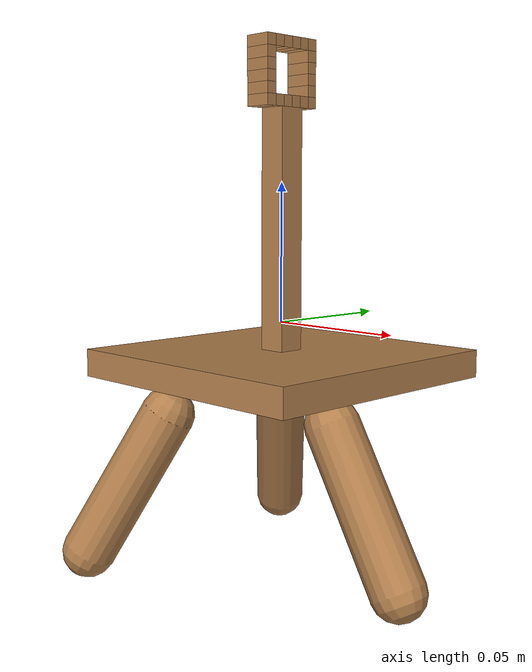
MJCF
<?xml version='1.0' encoding='utf-8'?>
<mujoco model="tripod">
  <asset>
    <texture type="cube" name="tripod_obj_lightwood" file="./light-wood.png" />
    <material name="tripod_obj_lightwood_mat" texture="tripod_obj_lightwood" specular="0.4" shininess="0.1" />
  </asset>
  <worldbody>
    <body name="tripod_obj_root">
      <geom name="tripod_obj_ring_0" size="0.005 0.002 0.002" pos="0 -0.01 0.078" type="box" friction="0.3" density="100" material="tripod_obj_lightwood_mat" />
      <geom name="tripod_obj_ring_1" size="0.005 0.002 0.002" pos="0 -0.006 0.078" type="box" friction="0.3" density="100" material="tripod_obj_lightwood_mat" />
      <geom name="tripod_obj_ring_2" size="0.005 0.002 0.002" pos="0 -0.002 0.078" type="box" friction="0.3" density="100" material="tripod_obj_lightwood_mat" />
      <geom name="tripod_obj_ring_3" size="0.005 0.002 0.002" pos="0 0.002 0.078" type="box" friction="0.3" density="100" material="tripod_obj_lightwood_mat" />
      <geom name="tripod_obj_ring_4" size="0.005 0.002 0.002" pos="0 0.006 0.078" type="box" friction="0.3" density="100" material="tripod_obj_lightwood_mat" />
      <geom name="tripod_obj_ring_5" size="0.005 0.002 0.002" pos="0 0.01 0.078" type="box" friction="0.3" density="100" material="tripod_obj_lightwood_mat" />
      <geom name="tripod_obj_ring_6" size="0.005 0.002 0.002" pos="0 -0.01 0.082" type="box" friction="0.3" density="100" material="tripod_obj_lightwood_mat" />
      <geom name="tripod_obj_ring_7" size="0.005 0.002 0.002" pos="0 0.01 0.082" type="box" friction="0.3" density="100" material="tripod_obj_lightwood_mat" />
      <geom name="tripod_obj_ring_8" size="0.005 0.002 0.002" pos="0 -0.01 0.086" type="box" friction="0.3" density="100" material="tripod_obj_lightwood_mat" />
      <geom name="tripod_obj_ring_9" size="0.005 0.002 0.002" pos="0 0.01 0.086" type="box" friction="0.3" density="100" material="tripod_obj_lightwood_mat" />
      <geom name="tripod_obj_ring_10" size="0.005 0.002 0.002" pos="0 -0.01 0.09" type="box" friction="0.3" density="100" material="tripod_obj_lightwood_mat" />
      <geom name="tripod_obj_ring_11" size="0.005 0.002 0.002" pos="0 0.01 0.09" type="box" friction="0.3" density="100" material="tripod_obj_lightwood_mat" />
      <geom name="tripod_obj_ring_12" size="0.005 0.002 0.002" pos="0 -0.01 0.094" type="box" friction="0.3" density="100" material="tripod_obj_lightwood_mat" />
      <geom name="tripod_obj_ring_13" size="0.005 0.002 0.002" pos="0 0.01 0.094" type="box" friction="0.3" density="100" material="tripod_obj_lightwood_mat" />
      <geom name="tripod_obj_ring_14" size="0.005 0.002 0.002" pos="0 -0.01 0.098" type="box" friction="0.3" density="100" material="tripod_obj_lightwood_mat" />
      <geom name="tripod_obj_ring_15" size="0.005 0.002 0.002" pos="0 -0.006 0.098" type="box" friction="0.3" density="100" material="tripod_obj_lightwood_mat" />
      <geom name="tripod_obj_ring_16" size="0.005 0.002 0.002" pos="0 -0.002 0.098" type="box" friction="0.3" density="100" material="tripod_obj_lightwood_mat" />
      <geom name="tripod_obj_ring_17" size="0.005 0.002 0.002" pos="0 0.002 0.098" type="box" friction="0.3" density="100" material="tripod_obj_lightwood_mat" />
      <geom name="tripod_obj_ring_18" size="0.005 0.002 0.002" pos="0 0.006 0.098" type="box" friction="0.3" density="100" material="tripod_obj_lightwood_mat" />
      <geom name="tripod_obj_ring_19" size="0.005 0.002 0.002" pos="0 0.01 0.098" type="box" friction="0.3" density="100" material="tripod_obj_lightwood_mat" />
      <geom name="tripod_obj_tripod_0" size="0.01 0.03" pos="-0.04 -0.04 -0.06" quat="0.965926 -0.183013 0.183013 -2.98023e-08" type="capsule" density="100" material="tripod_obj_lightwood_mat" />
      <geom name="tripod_obj_tripod_1" size="0.01 0.03" pos="-0.04 0.04 -0.06" quat="0.965926 0.183013 0.183013 -2.98023e-08" type="capsule" density="100" material="tripod_obj_lightwood_mat" />
      <geom name="tripod_obj_tripod_2" size="0.01 0.03" pos="0.04 0 -0.06" quat="0.965926 0 -0.258819 0" type="capsule" density="100" material="tripod_obj_lightwood_mat" />
      <geom name="tripod_obj_post_0" size="0.05 0.05 0.005" pos="0 0 -0.015" type="box" density="100" material="tripod_obj_lightwood_mat" />
      <geom name="tripod_obj_post_1" size="0.005 0.005 0.043" pos="0 0 0.033" type="box" density="100" material="tripod_obj_lightwood_mat" />
    </body>
  </worldbody>
</mujoco>
